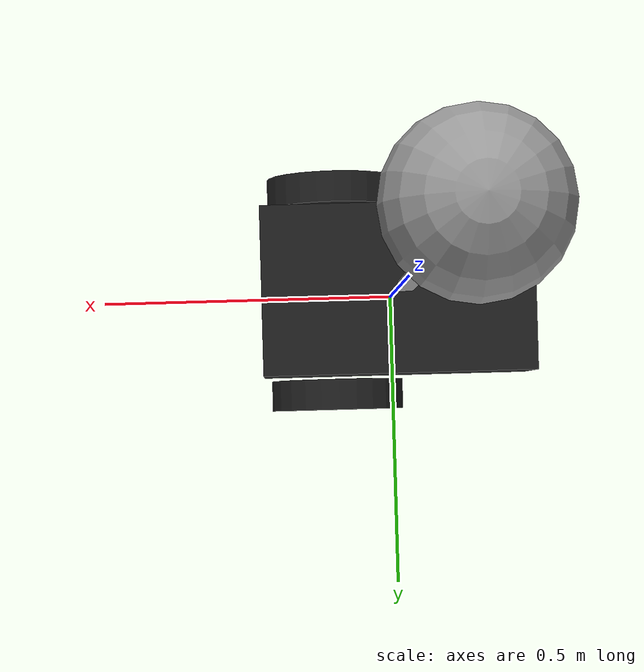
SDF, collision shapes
<?xml version='1.0'?>
<sdf version='1.6'>
  <model name='pioneer2dx_ball'>
    <link name='chassis'>
      <pose frame=''>-0 -0 0.16 0 -0 0</pose>
      <inertial>
        <mass>5.67</mass>
        <inertia>
          <ixx>0.07</ixx>
          <iyy>0.08</iyy>
          <izz>0.1</izz>
          <ixy>0</ixy>
          <ixz>0</ixz>
          <iyz>0</iyz>
        </inertia>
        <pose frame=''>0 0 0 0 -0 0</pose>
      </inertial>
      <self_collide>0</self_collide>
      <enable_wind>0</enable_wind>
      <kinematic>0</kinematic>
      <visual name='castor_visual'>
        <pose frame=''>-0.2 0 -0.12 0 -0 0</pose>
        <geometry>
          <sphere>
            <radius>0.04</radius>
          </sphere>
        </geometry>
        <material>
          <script>
            <uri>file://media/materials/scripts/gazebo.material</uri>
            <name>Gazebo/FlatBlack</name>
          </script>
          <shader type='pixel'/>
          <emissive>0 0 0 1</emissive>
        </material>
        <transparency>0</transparency>
        <cast_shadows>1</cast_shadows>
      </visual>
      <visual name='visual'>
        <pose frame=''>0 0 0.04 0 -0 0</pose>
        <geometry>
          <mesh>
            <uri>model://pioneer2dx/meshes/chassis.dae</uri>
          </mesh>
        </geometry>
        <material>
          <shader type='pixel'/>
          <emissive>0 0 0 1</emissive>
        </material>
        <transparency>0</transparency>
        <cast_shadows>1</cast_shadows>
      </visual>
      <collision name='collision'>
        <laser_retro>0</laser_retro>
        <max_contacts>10</max_contacts>
        <pose frame=''>0 0 0 0 -0 0</pose>
        <geometry>
          <box>
            <size>0.445 0.277 0.17</size>
          </box>
        </geometry>
        <surface>
          <friction>
            <ode>
              <mu>1</mu>
              <mu2>1</mu2>
              <fdir1>0 0 0</fdir1>
              <slip1>0</slip1>
              <slip2>0</slip2>
            </ode>
            <torsional>
              <coefficient>1</coefficient>
              <patch_radius>0</patch_radius>
              <surface_radius>0</surface_radius>
              <use_patch_radius>1</use_patch_radius>
              <ode>
                <slip>0</slip>
              </ode>
            </torsional>
          </friction>
          <bounce>
            <restitution_coefficient>0</restitution_coefficient>
            <threshold>1e+06</threshold>
          </bounce>
          <contact>
            <collide_without_contact>0</collide_without_contact>
            <collide_without_contact_bitmask>1</collide_without_contact_bitmask>
            <collide_bitmask>1</collide_bitmask>
            <ode>
              <soft_cfm>0</soft_cfm>
              <soft_erp>0.2</soft_erp>
              <kp>1e+13</kp>
              <kd>1</kd>
              <max_vel>0.01</max_vel>
              <min_depth>0</min_depth>
            </ode>
            <bullet>
              <split_impulse>1</split_impulse>
              <split_impulse_penetration_threshold>-0.01</split_impulse_penetration_threshold>
              <soft_cfm>0</soft_cfm>
              <soft_erp>0.2</soft_erp>
              <kp>1e+13</kp>
              <kd>1</kd>
            </bullet>
          </contact>
        </surface>
      </collision>
      <collision name='castor_collision'>
        <laser_retro>0</laser_retro>
        <max_contacts>10</max_contacts>
        <pose frame=''>-0.2 0 -0.12 0 -0 0</pose>
        <geometry>
          <sphere>
            <radius>0.04</radius>
          </sphere>
        </geometry>
        <surface>
          <friction>
            <ode>
              <mu>0</mu>
              <mu2>0</mu2>
              <fdir1>0 0 0</fdir1>
              <slip1>1</slip1>
              <slip2>1</slip2>
            </ode>
            <torsional>
              <coefficient>1</coefficient>
              <patch_radius>0</patch_radius>
              <surface_radius>0</surface_radius>
              <use_patch_radius>1</use_patch_radius>
              <ode>
                <slip>0</slip>
              </ode>
            </torsional>
          </friction>
          <bounce>
            <restitution_coefficient>0</restitution_coefficient>
            <threshold>1e+06</threshold>
          </bounce>
          <contact>
            <collide_without_contact>0</collide_without_contact>
            <collide_without_contact_bitmask>1</collide_without_contact_bitmask>
            <collide_bitmask>1</collide_bitmask>
            <ode>
              <soft_cfm>0</soft_cfm>
              <soft_erp>0.2</soft_erp>
              <kp>1e+13</kp>
              <kd>1</kd>
              <max_vel>0.01</max_vel>
              <min_depth>0</min_depth>
            </ode>
            <bullet>
              <split_impulse>1</split_impulse>
              <split_impulse_penetration_threshold>-0.01</split_impulse_penetration_threshold>
              <soft_cfm>0</soft_cfm>
              <soft_erp>0.2</soft_erp>
              <kp>1e+13</kp>
              <kd>1</kd>
            </bullet>
          </contact>
        </surface>
      </collision>
    </link>
    <link name='left_wheel'>
      <pose frame=''>0.1 0.17 0.11 0.000117 1.5707 1.57082</pose>
      <inertial>
        <mass>1.5</mass>
        <inertia>
          <ixx>0.0051</ixx>
          <iyy>0.0051</iyy>
          <izz>0.009</izz>
          <ixy>0</ixy>
          <ixz>0</ixz>
          <iyz>0</iyz>
        </inertia>
        <pose frame=''>0 0 0 0 -0 0</pose>
      </inertial>
      <self_collide>0</self_collide>
      <enable_wind>0</enable_wind>
      <kinematic>0</kinematic>
      <visual name='visual'>
        <geometry>
          <cylinder>
            <radius>0.11</radius>
            <length>0.05</length>
          </cylinder>
        </geometry>
        <material>
          <script>
            <uri>file://media/materials/scripts/gazebo.material</uri>
            <name>Gazebo/FlatBlack</name>
          </script>
          <shader type='pixel'/>
        </material>
        <pose frame=''>0 0 0 0 -0 0</pose>
        <transparency>0</transparency>
        <cast_shadows>1</cast_shadows>
      </visual>
      <collision name='collision'>
        <laser_retro>0</laser_retro>
        <max_contacts>10</max_contacts>
        <pose frame=''>0 0 0 0 -0 0</pose>
        <geometry>
          <cylinder>
            <radius>0.11</radius>
            <length>0.05</length>
          </cylinder>
        </geometry>
        <surface>
          <friction>
            <ode>
              <mu>100000</mu>
              <mu2>100000</mu2>
              <fdir1>0 0 0</fdir1>
              <slip1>0</slip1>
              <slip2>0</slip2>
            </ode>
            <torsional>
              <coefficient>1</coefficient>
              <patch_radius>0</patch_radius>
              <surface_radius>0</surface_radius>
              <use_patch_radius>1</use_patch_radius>
              <ode>
                <slip>0</slip>
              </ode>
            </torsional>
          </friction>
          <bounce>
            <restitution_coefficient>0</restitution_coefficient>
            <threshold>1e+06</threshold>
          </bounce>
          <contact>
            <collide_without_contact>0</collide_without_contact>
            <collide_without_contact_bitmask>1</collide_without_contact_bitmask>
            <collide_bitmask>1</collide_bitmask>
            <ode>
              <soft_cfm>0</soft_cfm>
              <soft_erp>0.2</soft_erp>
              <kp>1e+13</kp>
              <kd>1</kd>
              <max_vel>0.01</max_vel>
              <min_depth>0</min_depth>
            </ode>
            <bullet>
              <split_impulse>1</split_impulse>
              <split_impulse_penetration_threshold>-0.01</split_impulse_penetration_threshold>
              <soft_cfm>0</soft_cfm>
              <soft_erp>0.2</soft_erp>
              <kp>1e+13</kp>
              <kd>1</kd>
            </bullet>
          </contact>
        </surface>
      </collision>
    </link>
    <link name='link_1'>
      <inertial>
        <mass>0.000382729</mass>
        <inertia>
          <ixx>3.19027e-05</ixx>
          <ixy>0</ixy>
          <ixz>0</ixz>
          <iyy>3.19113e-05</iyy>
          <iyz>0</iyz>
          <izz>2.59062e-08</izz>
        </inertia>
        <pose frame=''>0 0 0 0 -0 0</pose>
      </inertial>
      <pose frame=''>-0.00873 0 0.767708 0 -0 0</pose>
      <self_collide>0</self_collide>
      <enable_wind>0</enable_wind>
      <kinematic>0</kinematic>
      <visual name='visual'>
        <pose frame=''>0 0 0 0 -0 0</pose>
        <geometry>
          <box>
            <size>0.023268 0.016457 1</size>
          </box>
        </geometry>
        <material>
          <lighting>1</lighting>
          <script>
            <uri>file://media/materials/scripts/gazebo.material</uri>
            <name>Gazebo/Grey</name>
          </script>
          <shader type='pixel'/>
          <emissive>0 0 0 1</emissive>
        </material>
        <transparency>0</transparency>
        <cast_shadows>1</cast_shadows>
      </visual>
      <collision name='collision'>
        <laser_retro>0</laser_retro>
        <max_contacts>10</max_contacts>
        <pose frame=''>0 0 0 0 -0 0</pose>
        <geometry>
          <box>
            <size>0.023268 0.016457 1</size>
          </box>
        </geometry>
        <surface>
          <friction>
            <ode>
              <mu>1</mu>
              <mu2>1</mu2>
              <fdir1>0 0 0</fdir1>
              <slip1>0</slip1>
              <slip2>0</slip2>
            </ode>
            <torsional>
              <coefficient>1</coefficient>
              <patch_radius>0</patch_radius>
              <surface_radius>0</surface_radius>
              <use_patch_radius>1</use_patch_radius>
              <ode>
                <slip>0</slip>
              </ode>
            </torsional>
          </friction>
          <bounce>
            <restitution_coefficient>0</restitution_coefficient>
            <threshold>1e+06</threshold>
          </bounce>
          <contact>
            <collide_without_contact>0</collide_without_contact>
            <collide_without_contact_bitmask>1</collide_without_contact_bitmask>
            <collide_bitmask>1</collide_bitmask>
            <ode>
              <soft_cfm>0</soft_cfm>
              <soft_erp>0.2</soft_erp>
              <kp>1e+13</kp>
              <kd>1</kd>
              <max_vel>0.01</max_vel>
              <min_depth>0</min_depth>
            </ode>
            <bullet>
              <split_impulse>1</split_impulse>
              <split_impulse_penetration_threshold>-0.01</split_impulse_penetration_threshold>
              <soft_cfm>0</soft_cfm>
              <soft_erp>0.2</soft_erp>
              <kp>1e+13</kp>
              <kd>1</kd>
            </bullet>
          </contact>
        </surface>
      </collision>
    </link>
    <link name='link_2'>
      <inertial>
        <mass>0.5</mass>
        <inertia>
          <ixx>0.00200981</ixx>
          <ixy>0</ixy>
          <ixz>0</ixz>
          <iyy>0.00200981</iyy>
          <iyz>0</iyz>
          <izz>0.00200981</izz>
        </inertia>
        <pose frame=''>0 0 0 0 -0 0</pose>
      </inertial>
      <pose frame=''>-0.008115 -0.004327 1.36735 0 -0 0</pose>
      <gravity>1</gravity>
      <self_collide>0</self_collide>
      <kinematic>0</kinematic>
      <enable_wind>0</enable_wind>
      <visual name='visual'>
        <pose frame=''>0 0 0 0 -0 0</pose>
        <geometry>
          <sphere>
            <radius>0.100245</radius>
          </sphere>
        </geometry>
        <material>
          <lighting>1</lighting>
          <script>
            <uri>file://media/materials/scripts/gazebo.material</uri>
            <name>Gazebo/Grey</name>
          </script>
          <shader type='pixel'>
            <normal_map>__default__</normal_map>
          </shader>
          <emissive>0 0 0 1</emissive>
        </material>
        <transparency>0</transparency>
        <cast_shadows>1</cast_shadows>
      </visual>
      <collision name='collision'>
        <laser_retro>0</laser_retro>
        <max_contacts>10</max_contacts>
        <pose frame=''>0 0 0 0 -0 0</pose>
        <geometry>
          <sphere>
            <radius>0.100245</radius>
          </sphere>
        </geometry>
        <surface>
          <friction>
            <ode>
              <mu>1</mu>
              <mu2>1</mu2>
              <fdir1>0 0 0</fdir1>
              <slip1>0</slip1>
              <slip2>0</slip2>
            </ode>
            <torsional>
              <coefficient>1</coefficient>
              <patch_radius>0</patch_radius>
              <surface_radius>0</surface_radius>
              <use_patch_radius>1</use_patch_radius>
              <ode>
                <slip>0</slip>
              </ode>
            </torsional>
          </friction>
          <bounce>
            <restitution_coefficient>0</restitution_coefficient>
            <threshold>1e+06</threshold>
          </bounce>
          <contact>
            <collide_without_contact>0</collide_without_contact>
            <collide_without_contact_bitmask>1</collide_without_contact_bitmask>
            <collide_bitmask>1</collide_bitmask>
            <ode>
              <soft_cfm>0</soft_cfm>
              <soft_erp>0.2</soft_erp>
              <kp>1e+13</kp>
              <kd>1</kd>
              <max_vel>0.01</max_vel>
              <min_depth>0</min_depth>
            </ode>
            <bullet>
              <split_impulse>1</split_impulse>
              <split_impulse_penetration_threshold>-0.01</split_impulse_penetration_threshold>
              <soft_cfm>0</soft_cfm>
              <soft_erp>0.2</soft_erp>
              <kp>1e+13</kp>
              <kd>1</kd>
            </bullet>
          </contact>
        </surface>
      </collision>
    </link>
    <link name='right_wheel'>
      <pose frame=''>0.1 -0.17 0.11 0.000117 1.5707 1.57082</pose>
      <inertial>
        <mass>1.5</mass>
        <inertia>
          <ixx>0.0051</ixx>
          <iyy>0.0051</iyy>
          <izz>0.009</izz>
          <ixy>0</ixy>
          <ixz>0</ixz>
          <iyz>0</iyz>
        </inertia>
        <pose frame=''>0 0 0 0 -0 0</pose>
      </inertial>
      <self_collide>0</self_collide>
      <enable_wind>0</enable_wind>
      <kinematic>0</kinematic>
      <visual name='visual'>
        <geometry>
          <cylinder>
            <radius>0.11</radius>
            <length>0.05</length>
          </cylinder>
        </geometry>
        <material>
          <script>
            <uri>file://media/materials/scripts/gazebo.material</uri>
            <name>Gazebo/FlatBlack</name>
          </script>
          <shader type='pixel'/>
          <emissive>0 0 0 1</emissive>
        </material>
        <pose frame=''>0 0 0 0 -0 0</pose>
        <transparency>0</transparency>
        <cast_shadows>1</cast_shadows>
      </visual>
      <collision name='collision'>
        <laser_retro>0</laser_retro>
        <max_contacts>10</max_contacts>
        <pose frame=''>0 0 0 0 -0 0</pose>
        <geometry>
          <cylinder>
            <radius>0.11</radius>
            <length>0.05</length>
          </cylinder>
        </geometry>
        <surface>
          <friction>
            <ode>
              <mu>100000</mu>
              <mu2>100000</mu2>
              <fdir1>0 0 0</fdir1>
              <slip1>0</slip1>
              <slip2>0</slip2>
            </ode>
            <torsional>
              <coefficient>1</coefficient>
              <patch_radius>0</patch_radius>
              <surface_radius>0</surface_radius>
              <use_patch_radius>1</use_patch_radius>
              <ode>
                <slip>0</slip>
              </ode>
            </torsional>
          </friction>
          <bounce>
            <restitution_coefficient>0</restitution_coefficient>
            <threshold>1e+06</threshold>
          </bounce>
          <contact>
            <collide_without_contact>0</collide_without_contact>
            <collide_without_contact_bitmask>1</collide_without_contact_bitmask>
            <collide_bitmask>1</collide_bitmask>
            <ode>
              <soft_cfm>0</soft_cfm>
              <soft_erp>0.2</soft_erp>
              <kp>1e+13</kp>
              <kd>1</kd>
              <max_vel>0.01</max_vel>
              <min_depth>0</min_depth>
            </ode>
            <bullet>
              <split_impulse>1</split_impulse>
              <split_impulse_penetration_threshold>-0.01</split_impulse_penetration_threshold>
              <soft_cfm>0</soft_cfm>
              <soft_erp>0.2</soft_erp>
              <kp>1e+13</kp>
              <kd>1</kd>
            </bullet>
          </contact>
        </surface>
      </collision>
    </link>
    <joint name='chassis_JOINT_0' type='revolute'>
      <parent>chassis</parent>
      <child>link_1</child>
      <pose frame=''>0 0 -0.5 0 -0 0</pose>
      <axis>
        <xyz>0 1 0</xyz>
        <use_parent_model_frame>0</use_parent_model_frame>
        <limit>
          <lower>-1.79769e+308</lower>
          <upper>1.79769e+308</upper>
          <effort>-1</effort>
          <velocity>-1</velocity>
        </limit>
        <dynamics>
          <spring_reference>0</spring_reference>
          <spring_stiffness>0</spring_stiffness>
          <damping>0</damping>
          <friction>0</friction>
        </dynamics>
      </axis>
      <physics>
        <ode>
          <limit>
            <cfm>0</cfm>
            <erp>0.2</erp>
          </limit>
          <suspension>
            <cfm>0</cfm>
            <erp>0.2</erp>
          </suspension>
        </ode>
      </physics>
    </joint>
    <joint name='left_wheel_hinge' type='revolute'>
      <parent>chassis</parent>
      <child>left_wheel</child>
      <pose frame=''>0 0 -0.03 0 -0 0</pose>
      <axis>
        <xyz>0 1 0</xyz>
        <use_parent_model_frame>1</use_parent_model_frame>
        <limit>
          <lower>-1e+16</lower>
          <upper>1e+16</upper>
          <effort>-1</effort>
          <velocity>-1</velocity>
        </limit>
        <dynamics>
          <spring_reference>0</spring_reference>
          <spring_stiffness>0</spring_stiffness>
          <damping>0</damping>
          <friction>0</friction>
        </dynamics>
      </axis>
      <physics>
        <ode>
          <limit>
            <cfm>0</cfm>
            <erp>0.2</erp>
          </limit>
          <suspension>
            <cfm>0</cfm>
            <erp>0.2</erp>
          </suspension>
        </ode>
      </physics>
    </joint>
    <joint name='link_1_JOINT_2' type='fixed'>
      <parent>link_1</parent>
      <child>link_2</child>
      <pose frame=''>0 0 0 0 -0 0</pose>
      <physics>
        <ode>
          <limit>
            <cfm>0</cfm>
            <erp>0.2</erp>
          </limit>
          <suspension>
            <cfm>0</cfm>
            <erp>0.2</erp>
          </suspension>
        </ode>
      </physics>
    </joint>
    <joint name='right_wheel_hinge' type='revolute'>
      <parent>chassis</parent>
      <child>right_wheel</child>
      <pose frame=''>0 0 0.03 0 -0 0</pose>
      <axis>
        <xyz>0 1 0</xyz>
        <use_parent_model_frame>1</use_parent_model_frame>
        <limit>
          <lower>-1e+16</lower>
          <upper>1e+16</upper>
          <effort>-1</effort>
          <velocity>-1</velocity>
        </limit>
        <dynamics>
          <spring_reference>0</spring_reference>
          <spring_stiffness>0</spring_stiffness>
          <damping>0</damping>
          <friction>0</friction>
        </dynamics>
      </axis>
      <physics>
        <ode>
          <limit>
            <cfm>0</cfm>
            <erp>0.2</erp>
          </limit>
          <suspension>
            <cfm>0</cfm>
            <erp>0.2</erp>
          </suspension>
        </ode>
      </physics>
    </joint>
    <static>0</static>
    <allow_auto_disable>1</allow_auto_disable>
    <plugin name='diff_drive' filename='libDiffDrivePlugin.so'>
      <left_joint>left_wheel_hinge</left_joint>
      <right_joint>right_wheel_hinge</right_joint>
      <torque>5</torque>
    </plugin>
  </model>
</sdf>
